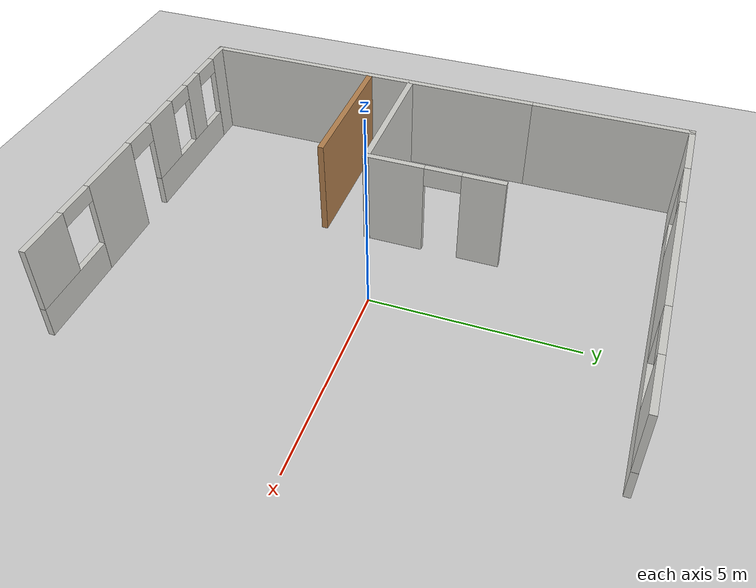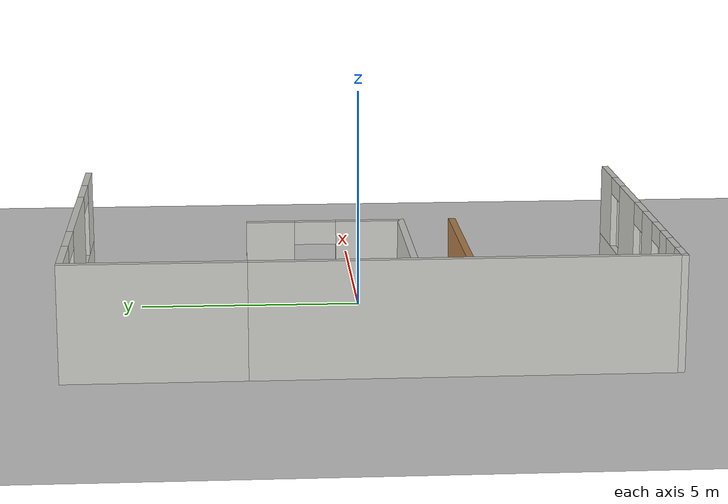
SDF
<sdf version="1.6">
 <world name="default">
  <model name="ground_plane">
   <static>1</static>
   <link name="link">
    <collision name="collision">
     <geometry><plane><normal>0 0 1</normal><size>100 100</size></plane></geometry>
     <surface>
      <contact><collide_bitmask>65535</collide_bitmask></contact>
      <friction><ode><mu>100</mu><mu2>50</mu2></ode></friction>
     </surface>
    </collision>
    <visual name="visual">
     <cast_shadows>0</cast_shadows>
     <geometry><plane><normal>0 0 1</normal><size>100 100</size></plane></geometry>
     <material>
      <script><uri>file://media/materials/scripts/gazebo.material</uri><name>Gazebo/Grey</name></script>
     </material>
    </visual>
   </link>
  </model>
  <model name="house">
   <link name="Wall_0">
    <pose>-5.72496 -1.92194 0 0 -0 1.5708</pose>
    <visual name="Wall_0_Visual">
     <pose>0 0 1.25 0 -0 0</pose>
     <geometry><box><size>9 0.15 2.5</size></box></geometry>
     <material>
      <script><uri>file://media/materials/scripts/gazebo.material</uri><name>Gazebo/CeilingTiled</name></script>
      <ambient>1 1 1 1</ambient>
      <shader type="pixel"/>
     </material>
     <meta><layer>0</layer></meta>
    </visual>
    <collision name="Wall_0_Collision">
     <pose>0 0 1.25 0 -0 0</pose>
     <geometry><box><size>9 0.15 2.5</size></box></geometry>
     <surface>
      <friction>
       <ode><mu>1</mu><mu2>1</mu2><fdir1>0 0 0</fdir1><slip1>0</slip1><slip2>0</slip2></ode>
       <torsional>
        <coefficient>1</coefficient>
        <patch_radius>0</patch_radius>
        <surface_radius>0</surface_radius>
        <use_patch_radius>1</use_patch_radius>
        <ode><slip>0</slip></ode>
       </torsional>
      </friction>
      <bounce><restitution_coefficient>0</restitution_coefficient><threshold>1e+06</threshold></bounce>
      <contact>
       <collide_without_contact>0</collide_without_contact>
       <collide_without_contact_bitmask>1</collide_without_contact_bitmask>
       <collide_bitmask>1</collide_bitmask>
       <ode>
        <soft_cfm>0</soft_cfm>
        <soft_erp>0.2</soft_erp>
        <kp>1e+13</kp>
        <kd>1</kd>
        <max_vel>0.01</max_vel>
        <min_depth>0</min_depth>
       </ode>
       <bullet>
        <split_impulse>1</split_impulse>
        <split_impulse_penetration_threshold>-0.01</split_impulse_penetration_threshold>
        <soft_cfm>0</soft_cfm>
        <soft_erp>0.2</soft_erp>
        <kp>1e+13</kp>
        <kd>1</kd>
       </bullet>
      </contact>
     </surface>
    </collision>
   </link>
   <link name="Wall_13">
    <pose>-2.28096 0.843058 0 0 -0 1.5708</pose>
    <visual name="Wall_13_Visual_2">
     <pose>0.228595 0 2.25 0 -0 0</pose>
     <geometry><box><size>0.9 0.15 0.5</size></box></geometry>
     <material>
      <script><uri>file://media/materials/scripts/gazebo.material</uri><name>Gazebo/CeilingTiled</name></script>
      <ambient>1 1 1 1</ambient>
      <shader type="pixel"/>
     </material>
     <meta><layer>0</layer></meta>
    </visual>
    <visual name="Wall_13_Visual_1">
     <pose>1.2018 0 1.25 0 -0 0</pose>
     <geometry><box><size>1.04641 0.15 2.5</size></box></geometry>
     <material>
      <script><uri>file://media/materials/scripts/gazebo.material</uri><name>Gazebo/CeilingTiled</name></script>
      <ambient>1 1 1 1</ambient>
      <shader type="pixel"/>
     </material>
     <meta><layer>0</layer></meta>
    </visual>
    <visual name="Wall_13_Visual_0">
     <pose>-0.973203 0 1.25 0 -0 0</pose>
     <geometry><box><size>1.5036 0.15 2.5</size></box></geometry>
     <material>
      <script><uri>file://media/materials/scripts/gazebo.material</uri><name>Gazebo/CeilingTiled</name></script>
      <ambient>1 1 1 1</ambient>
      <shader type="pixel"/>
     </material>
     <meta><layer>0</layer></meta>
    </visual>
    <collision name="Wall_13_Collision_1">
     <pose>1.2018 0 1.25 0 -0 0</pose>
     <geometry><box><size>1.04641 0.15 2.5</size></box></geometry>
     <surface>
      <friction>
       <ode><mu>1</mu><mu2>1</mu2><fdir1>0 0 0</fdir1><slip1>0</slip1><slip2>0</slip2></ode>
       <torsional>
        <coefficient>1</coefficient>
        <patch_radius>0</patch_radius>
        <surface_radius>0</surface_radius>
        <use_patch_radius>1</use_patch_radius>
        <ode><slip>0</slip></ode>
       </torsional>
      </friction>
      <bounce><restitution_coefficient>0</restitution_coefficient><threshold>1e+06</threshold></bounce>
      <contact>
       <collide_without_contact>0</collide_without_contact>
       <collide_without_contact_bitmask>1</collide_without_contact_bitmask>
       <collide_bitmask>1</collide_bitmask>
       <ode>
        <soft_cfm>0</soft_cfm>
        <soft_erp>0.2</soft_erp>
        <kp>1e+13</kp>
        <kd>1</kd>
        <max_vel>0.01</max_vel>
        <min_depth>0</min_depth>
       </ode>
       <bullet>
        <split_impulse>1</split_impulse>
        <split_impulse_penetration_threshold>-0.01</split_impulse_penetration_threshold>
        <soft_cfm>0</soft_cfm>
        <soft_erp>0.2</soft_erp>
        <kp>1e+13</kp>
        <kd>1</kd>
       </bullet>
      </contact>
     </surface>
    </collision>
    <collision name="Wall_13_Collision_2">
     <pose>0.228595 0 2.25 0 -0 0</pose>
     <geometry><box><size>0.9 0.15 0.5</size></box></geometry>
     <surface>
      <friction>
       <ode><mu>1</mu><mu2>1</mu2><fdir1>0 0 0</fdir1><slip1>0</slip1><slip2>0</slip2></ode>
       <torsional>
        <coefficient>1</coefficient>
        <patch_radius>0</patch_radius>
        <surface_radius>0</surface_radius>
        <use_patch_radius>1</use_patch_radius>
        <ode><slip>0</slip></ode>
       </torsional>
      </friction>
      <bounce><restitution_coefficient>0</restitution_coefficient><threshold>1e+06</threshold></bounce>
      <contact>
       <collide_without_contact>0</collide_without_contact>
       <collide_without_contact_bitmask>1</collide_without_contact_bitmask>
       <collide_bitmask>1</collide_bitmask>
       <ode>
        <soft_cfm>0</soft_cfm>
        <soft_erp>0.2</soft_erp>
        <kp>1e+13</kp>
        <kd>1</kd>
        <max_vel>0.01</max_vel>
        <min_depth>0</min_depth>
       </ode>
       <bullet>
        <split_impulse>1</split_impulse>
        <split_impulse_penetration_threshold>-0.01</split_impulse_penetration_threshold>
        <soft_cfm>0</soft_cfm>
        <soft_erp>0.2</soft_erp>
        <kp>1e+13</kp>
        <kd>1</kd>
       </bullet>
      </contact>
     </surface>
    </collision>
    <collision name="Wall_13_Collision_0">
     <pose>-0.973203 0 1.25 0 -0 0</pose>
     <geometry><box><size>1.5036 0.15 2.5</size></box></geometry>
     <surface>
      <friction>
       <ode><mu>1</mu><mu2>1</mu2><fdir1>0 0 0</fdir1><slip1>0</slip1><slip2>0</slip2></ode>
       <torsional>
        <coefficient>1</coefficient>
        <patch_radius>0</patch_radius>
        <surface_radius>0</surface_radius>
        <use_patch_radius>1</use_patch_radius>
        <ode><slip>0</slip></ode>
       </torsional>
      </friction>
      <bounce><restitution_coefficient>0</restitution_coefficient><threshold>1e+06</threshold></bounce>
      <contact>
       <collide_without_contact>0</collide_without_contact>
       <collide_without_contact_bitmask>1</collide_without_contact_bitmask>
       <collide_bitmask>1</collide_bitmask>
       <ode>
        <soft_cfm>0</soft_cfm>
        <soft_erp>0.2</soft_erp>
        <kp>1e+13</kp>
        <kd>1</kd>
        <max_vel>0.01</max_vel>
        <min_depth>0</min_depth>
       </ode>
       <bullet>
        <split_impulse>1</split_impulse>
        <split_impulse_penetration_threshold>-0.01</split_impulse_penetration_threshold>
        <soft_cfm>0</soft_cfm>
        <soft_erp>0.2</soft_erp>
        <kp>1e+13</kp>
        <kd>1</kd>
       </bullet>
      </contact>
     </surface>
    </collision>
   </link>
   <link name="Wall_15">
    <pose>-5.72496 4.42806 0 0 -0 1.5708</pose>
    <visual name="Wall_15_Visual">
     <pose>0 0 1.25 0 -0 0</pose>
     <geometry><box><size>4 0.15 2.5</size></box></geometry>
     <material>
      <script><uri>file://media/materials/scripts/gazebo.material</uri><name>Gazebo/CeilingTiled</name></script>
      <ambient>1 1 1 1</ambient>
      <shader type="pixel"/>
     </material>
     <meta><layer>0</layer></meta>
    </visual>
    <collision name="Wall_15_Collision">
     <pose>0 0 1.25 0 -0 0</pose>
     <geometry><box><size>4 0.15 2.5</size></box></geometry>
     <surface>
      <friction>
       <ode><mu>1</mu><mu2>1</mu2><fdir1>0 0 0</fdir1><slip1>0</slip1><slip2>0</slip2></ode>
       <torsional>
        <coefficient>1</coefficient>
        <patch_radius>0</patch_radius>
        <surface_radius>0</surface_radius>
        <use_patch_radius>1</use_patch_radius>
        <ode><slip>0</slip></ode>
       </torsional>
      </friction>
      <bounce><restitution_coefficient>0</restitution_coefficient><threshold>1e+06</threshold></bounce>
      <contact>
       <collide_without_contact>0</collide_without_contact>
       <collide_without_contact_bitmask>1</collide_without_contact_bitmask>
       <collide_bitmask>1</collide_bitmask>
       <ode>
        <soft_cfm>0</soft_cfm>
        <soft_erp>0.2</soft_erp>
        <kp>1e+13</kp>
        <kd>1</kd>
        <max_vel>0.01</max_vel>
        <min_depth>0</min_depth>
       </ode>
       <bullet>
        <split_impulse>1</split_impulse>
        <split_impulse_penetration_threshold>-0.01</split_impulse_penetration_threshold>
        <soft_cfm>0</soft_cfm>
        <soft_erp>0.2</soft_erp>
        <kp>1e+13</kp>
        <kd>1</kd>
       </bullet>
      </contact>
     </surface>
    </collision>
   </link>
   <link name="Wall_16">
    <pose>-1.29996 6.35306 0 0 -0 0</pose>
    <visual name="Wall_16_Visual_5">
     <pose>2.41041 0 2.3 0 -0 0</pose>
     <geometry><box><size>1.3 0.15 0.4</size></box></geometry>
     <material>
      <script><uri>file://media/materials/scripts/gazebo.material</uri><name>Gazebo/CeilingTiled</name></script>
      <ambient>1 1 1 1</ambient>
      <shader type="pixel"/>
     </material>
     <meta><layer>0</layer></meta>
    </visual>
    <visual name="Wall_16_Visual_1">
     <pose>0.804809 0 0.4 0 -0 0</pose>
     <geometry><box><size>7.39038 0.15 0.8</size></box></geometry>
     <material>
      <script><uri>file://media/materials/scripts/gazebo.material</uri><name>Gazebo/CeilingTiled</name></script>
      <ambient>1 1 1 1</ambient>
      <shader type="pixel"/>
     </material>
     <meta><layer>0</layer></meta>
    </visual>
    <visual name="Wall_16_Visual_0">
     <pose>-3.69519 0 1.25 0 -0 0</pose>
     <geometry><box><size>1.60962 0.15 2.5</size></box></geometry>
     <material>
      <script><uri>file://media/materials/scripts/gazebo.material</uri><name>Gazebo/CeilingTiled</name></script>
      <ambient>1 1 1 1</ambient>
      <shader type="pixel"/>
     </material>
     <meta><layer>0</layer></meta>
    </visual>
    <visual name="Wall_16_Visual_2">
     <pose>0.085016 0 1.65 0 -0 0</pose>
     <geometry><box><size>3.3508 0.15 1.7</size></box></geometry>
     <material>
      <script><uri>file://media/materials/scripts/gazebo.material</uri><name>Gazebo/CeilingTiled</name></script>
      <ambient>1 1 1 1</ambient>
      <shader type="pixel"/>
     </material>
     <meta><layer>0</layer></meta>
    </visual>
    <visual name="Wall_16_Visual_4">
     <pose>-2.24038 0 2.3 0 -0 0</pose>
     <geometry><box><size>1.3 0.15 0.4</size></box></geometry>
     <material>
      <script><uri>file://media/materials/scripts/gazebo.material</uri><name>Gazebo/CeilingTiled</name></script>
      <ambient>1 1 1 1</ambient>
      <shader type="pixel"/>
     </material>
     <meta><layer>0</layer></meta>
    </visual>
    <visual name="Wall_16_Visual_3">
     <pose>3.78021 0 1.65 0 -0 0</pose>
     <geometry><box><size>1.43959 0.15 1.7</size></box></geometry>
     <material>
      <script><uri>file://media/materials/scripts/gazebo.material</uri><name>Gazebo/CeilingTiled</name></script>
      <ambient>1 1 1 1</ambient>
      <shader type="pixel"/>
     </material>
     <meta><layer>0</layer></meta>
    </visual>
    <collision name="Wall_16_Collision_2">
     <pose>0.085016 0 1.65 0 -0 0</pose>
     <geometry><box><size>3.3508 0.15 1.7</size></box></geometry>
     <surface>
      <friction>
       <ode><mu>1</mu><mu2>1</mu2><fdir1>0 0 0</fdir1><slip1>0</slip1><slip2>0</slip2></ode>
       <torsional>
        <coefficient>1</coefficient>
        <patch_radius>0</patch_radius>
        <surface_radius>0</surface_radius>
        <use_patch_radius>1</use_patch_radius>
        <ode><slip>0</slip></ode>
       </torsional>
      </friction>
      <bounce><restitution_coefficient>0</restitution_coefficient><threshold>1e+06</threshold></bounce>
      <contact>
       <collide_without_contact>0</collide_without_contact>
       <collide_without_contact_bitmask>1</collide_without_contact_bitmask>
       <collide_bitmask>1</collide_bitmask>
       <ode>
        <soft_cfm>0</soft_cfm>
        <soft_erp>0.2</soft_erp>
        <kp>1e+13</kp>
        <kd>1</kd>
        <max_vel>0.01</max_vel>
        <min_depth>0</min_depth>
       </ode>
       <bullet>
        <split_impulse>1</split_impulse>
        <split_impulse_penetration_threshold>-0.01</split_impulse_penetration_threshold>
        <soft_cfm>0</soft_cfm>
        <soft_erp>0.2</soft_erp>
        <kp>1e+13</kp>
        <kd>1</kd>
       </bullet>
      </contact>
     </surface>
    </collision>
    <collision name="Wall_16_Collision_0">
     <pose>-3.69519 0 1.25 0 -0 0</pose>
     <geometry><box><size>1.60962 0.15 2.5</size></box></geometry>
     <surface>
      <friction>
       <ode><mu>1</mu><mu2>1</mu2><fdir1>0 0 0</fdir1><slip1>0</slip1><slip2>0</slip2></ode>
       <torsional>
        <coefficient>1</coefficient>
        <patch_radius>0</patch_radius>
        <surface_radius>0</surface_radius>
        <use_patch_radius>1</use_patch_radius>
        <ode><slip>0</slip></ode>
       </torsional>
      </friction>
      <bounce><restitution_coefficient>0</restitution_coefficient><threshold>1e+06</threshold></bounce>
      <contact>
       <collide_without_contact>0</collide_without_contact>
       <collide_without_contact_bitmask>1</collide_without_contact_bitmask>
       <collide_bitmask>1</collide_bitmask>
       <ode>
        <soft_cfm>0</soft_cfm>
        <soft_erp>0.2</soft_erp>
        <kp>1e+13</kp>
        <kd>1</kd>
        <max_vel>0.01</max_vel>
        <min_depth>0</min_depth>
       </ode>
       <bullet>
        <split_impulse>1</split_impulse>
        <split_impulse_penetration_threshold>-0.01</split_impulse_penetration_threshold>
        <soft_cfm>0</soft_cfm>
        <soft_erp>0.2</soft_erp>
        <kp>1e+13</kp>
        <kd>1</kd>
       </bullet>
      </contact>
     </surface>
    </collision>
    <collision name="Wall_16_Collision_3">
     <pose>3.78021 0 1.65 0 -0 0</pose>
     <geometry><box><size>1.43959 0.15 1.7</size></box></geometry>
     <surface>
      <friction>
       <ode><mu>1</mu><mu2>1</mu2><fdir1>0 0 0</fdir1><slip1>0</slip1><slip2>0</slip2></ode>
       <torsional>
        <coefficient>1</coefficient>
        <patch_radius>0</patch_radius>
        <surface_radius>0</surface_radius>
        <use_patch_radius>1</use_patch_radius>
        <ode><slip>0</slip></ode>
       </torsional>
      </friction>
      <bounce><restitution_coefficient>0</restitution_coefficient><threshold>1e+06</threshold></bounce>
      <contact>
       <collide_without_contact>0</collide_without_contact>
       <collide_without_contact_bitmask>1</collide_without_contact_bitmask>
       <collide_bitmask>1</collide_bitmask>
       <ode>
        <soft_cfm>0</soft_cfm>
        <soft_erp>0.2</soft_erp>
        <kp>1e+13</kp>
        <kd>1</kd>
        <max_vel>0.01</max_vel>
        <min_depth>0</min_depth>
       </ode>
       <bullet>
        <split_impulse>1</split_impulse>
        <split_impulse_penetration_threshold>-0.01</split_impulse_penetration_threshold>
        <soft_cfm>0</soft_cfm>
        <soft_erp>0.2</soft_erp>
        <kp>1e+13</kp>
        <kd>1</kd>
       </bullet>
      </contact>
     </surface>
    </collision>
    <collision name="Wall_16_Collision_4">
     <pose>-2.24038 0 2.3 0 -0 0</pose>
     <geometry><box><size>1.3 0.15 0.4</size></box></geometry>
     <surface>
      <friction>
       <ode><mu>1</mu><mu2>1</mu2><fdir1>0 0 0</fdir1><slip1>0</slip1><slip2>0</slip2></ode>
       <torsional>
        <coefficient>1</coefficient>
        <patch_radius>0</patch_radius>
        <surface_radius>0</surface_radius>
        <use_patch_radius>1</use_patch_radius>
        <ode><slip>0</slip></ode>
       </torsional>
      </friction>
      <bounce><restitution_coefficient>0</restitution_coefficient><threshold>1e+06</threshold></bounce>
      <contact>
       <collide_without_contact>0</collide_without_contact>
       <collide_without_contact_bitmask>1</collide_without_contact_bitmask>
       <collide_bitmask>1</collide_bitmask>
       <ode>
        <soft_cfm>0</soft_cfm>
        <soft_erp>0.2</soft_erp>
        <kp>1e+13</kp>
        <kd>1</kd>
        <max_vel>0.01</max_vel>
        <min_depth>0</min_depth>
       </ode>
       <bullet>
        <split_impulse>1</split_impulse>
        <split_impulse_penetration_threshold>-0.01</split_impulse_penetration_threshold>
        <soft_cfm>0</soft_cfm>
        <soft_erp>0.2</soft_erp>
        <kp>1e+13</kp>
        <kd>1</kd>
       </bullet>
      </contact>
     </surface>
    </collision>
    <collision name="Wall_16_Collision_5">
     <pose>2.41041 0 2.3 0 -0 0</pose>
     <geometry><box><size>1.3 0.15 0.4</size></box></geometry>
     <surface>
      <friction>
       <ode><mu>1</mu><mu2>1</mu2><fdir1>0 0 0</fdir1><slip1>0</slip1><slip2>0</slip2></ode>
       <torsional>
        <coefficient>1</coefficient>
        <patch_radius>0</patch_radius>
        <surface_radius>0</surface_radius>
        <use_patch_radius>1</use_patch_radius>
        <ode><slip>0</slip></ode>
       </torsional>
      </friction>
      <bounce><restitution_coefficient>0</restitution_coefficient><threshold>1e+06</threshold></bounce>
      <contact>
       <collide_without_contact>0</collide_without_contact>
       <collide_without_contact_bitmask>1</collide_without_contact_bitmask>
       <collide_bitmask>1</collide_bitmask>
       <ode>
        <soft_cfm>0</soft_cfm>
        <soft_erp>0.2</soft_erp>
        <kp>1e+13</kp>
        <kd>1</kd>
        <max_vel>0.01</max_vel>
        <min_depth>0</min_depth>
       </ode>
       <bullet>
        <split_impulse>1</split_impulse>
        <split_impulse_penetration_threshold>-0.01</split_impulse_penetration_threshold>
        <soft_cfm>0</soft_cfm>
        <soft_erp>0.2</soft_erp>
        <kp>1e+13</kp>
        <kd>1</kd>
       </bullet>
      </contact>
     </surface>
    </collision>
    <collision name="Wall_16_Collision_1">
     <pose>0.804809 0 0.4 0 -0 0</pose>
     <geometry><box><size>7.39038 0.15 0.8</size></box></geometry>
     <surface>
      <friction>
       <ode><mu>1</mu><mu2>1</mu2><fdir1>0 0 0</fdir1><slip1>0</slip1><slip2>0</slip2></ode>
       <torsional>
        <coefficient>1</coefficient>
        <patch_radius>0</patch_radius>
        <surface_radius>0</surface_radius>
        <use_patch_radius>1</use_patch_radius>
        <ode><slip>0</slip></ode>
       </torsional>
      </friction>
      <bounce><restitution_coefficient>0</restitution_coefficient><threshold>1e+06</threshold></bounce>
      <contact>
       <collide_without_contact>0</collide_without_contact>
       <collide_without_contact_bitmask>1</collide_without_contact_bitmask>
       <collide_bitmask>1</collide_bitmask>
       <ode>
        <soft_cfm>0</soft_cfm>
        <soft_erp>0.2</soft_erp>
        <kp>1e+13</kp>
        <kd>1</kd>
        <max_vel>0.01</max_vel>
        <min_depth>0</min_depth>
       </ode>
       <bullet>
        <split_impulse>1</split_impulse>
        <split_impulse_penetration_threshold>-0.01</split_impulse_penetration_threshold>
        <soft_cfm>0</soft_cfm>
        <soft_erp>0.2</soft_erp>
        <kp>1e+13</kp>
        <kd>1</kd>
       </bullet>
      </contact>
     </surface>
    </collision>
   </link>
   <link name="Wall_2">
    <pose>-1.29996 -6.34794 0 0 0 -0.000226</pose>
    <inertial>
     <mass>1</mass>
     <inertia><ixx>1</ixx><ixy>0</ixy><ixz>0</ixz><iyy>1</iyy><iyz>0</iyz><izz>1</izz></inertia>
    </inertial>
    <visual name="Wall_2_Visual_2">
     <pose>-2.14 0 0.4 0 -0 0</pose>
     <geometry><box><size>3.31 0.15 0.8</size></box></geometry>
     <material>
      <script><uri>file://media/materials/scripts/gazebo.material</uri><name>Gazebo/CeilingTiled</name></script>
      <ambient>1 1 1 1</ambient>
      <shader type="pixel"><normal_map>__default__</normal_map></shader>
      <diffuse>0.7 0.7 0.7 1</diffuse>
      <specular>0.01 0.01 0.01 1</specular>
      <emissive>0 0 0 1</emissive>
     </material>
     <meta><layer>0</layer></meta>
    </visual>
    <visual name="Wall_2_Visual_3">
     <pose>3.33488 0 0.4 0 -0 0</pose>
     <geometry><box><size>2.33037 0.15 0.8</size></box></geometry>
     <material>
      <script><uri>file://media/materials/scripts/gazebo.material</uri><name>Gazebo/CeilingTiled</name></script>
      <ambient>1 1 1 1</ambient>
      <shader type="pixel"><normal_map>__default__</normal_map></shader>
      <diffuse>0.7 0.7 0.7 1</diffuse>
      <specular>0.01 0.01 0.01 1</specular>
      <emissive>0 0 0 1</emissive>
     </material>
     <meta><layer>0</layer></meta>
    </visual>
    <visual name="Wall_2_Visual_4">
     <pose>-2.67 0 1.65 0 -0 0</pose>
     <geometry><box><size>0.65 0.15 1.7</size></box></geometry>
     <material>
      <script><uri>file://media/materials/scripts/gazebo.material</uri><name>Gazebo/CeilingTiled</name></script>
      <ambient>1 1 1 1</ambient>
      <shader type="pixel"><normal_map>__default__</normal_map></shader>
      <diffuse>0.7 0.7 0.7 1</diffuse>
      <specular>0.01 0.01 0.01 1</specular>
      <emissive>0 0 0 1</emissive>
     </material>
     <meta><layer>0</layer></meta>
    </visual>
    <visual name="Wall_2_Visual_1">
     <pose>1.29235 0 1.25 0 -0 0</pose>
     <geometry><box><size>1.75469 0.15 2.5</size></box></geometry>
     <material>
      <script><uri>file://media/materials/scripts/gazebo.material</uri><name>Gazebo/CeilingTiled</name></script>
      <ambient>1 1 1 1</ambient>
      <shader type="pixel"><normal_map>__default__</normal_map></shader>
      <diffuse>0.7 0.7 0.7 1</diffuse>
      <specular>0.01 0.01 0.01 1</specular>
      <emissive>0 0 0 1</emissive>
     </material>
     <meta><layer>0</layer></meta>
    </visual>
    <visual name="Wall_2_Visual_11">
     <pose>2.66969 0 2.3 0 -0 0</pose>
     <geometry><box><size>1 0.15 0.4</size></box></geometry>
     <material>
      <script><uri>file://media/materials/scripts/gazebo.material</uri><name>Gazebo/CeilingTiled</name></script>
      <ambient>1 1 1 1</ambient>
      <shader type="pixel"><normal_map>__default__</normal_map></shader>
      <diffuse>0.7 0.7 0.7 1</diffuse>
      <specular>0.01 0.01 0.01 1</specular>
      <emissive>0 0 0 1</emissive>
     </material>
     <meta><layer>0</layer></meta>
    </visual>
    <visual name="Wall_2_Visual_6">
     <pose>-1.015 0 1.65 0 -0 0</pose>
     <geometry><box><size>1.06 0.15 1.7</size></box></geometry>
     <material>
      <script><uri>file://media/materials/scripts/gazebo.material</uri><name>Gazebo/CeilingTiled</name></script>
      <ambient>1 1 1 1</ambient>
      <shader type="pixel"><normal_map>__default__</normal_map></shader>
      <diffuse>0.7 0.7 0.7 1</diffuse>
      <specular>0.01 0.01 0.01 1</specular>
      <emissive>0 0 0 1</emissive>
     </material>
     <meta><layer>0</layer></meta>
    </visual>
    <visual name="Wall_2_Visual_5">
     <pose>-1.015 0 1.65 0 -0 0</pose>
     <geometry><box><size>1.06 0.15 1.7</size></box></geometry>
     <material>
      <script><uri>file://media/materials/scripts/gazebo.material</uri><name>Gazebo/CeilingTiled</name></script>
      <ambient>1 1 1 1</ambient>
      <shader type="pixel"><normal_map>__default__</normal_map></shader>
      <diffuse>0.7 0.7 0.7 1</diffuse>
      <specular>0.01 0.01 0.01 1</specular>
      <emissive>0 0 0 1</emissive>
     </material>
     <meta><layer>0</layer></meta>
    </visual>
    <visual name="Wall_2_Visual_9">
     <pose>-0.035 0 2.25 0 -0 0</pose>
     <geometry><box><size>0.9 0.15 0.5</size></box></geometry>
     <material>
      <script><uri>file://media/materials/scripts/gazebo.material</uri><name>Gazebo/CeilingTiled</name></script>
      <ambient>1 1 1 1</ambient>
      <shader type="pixel"><normal_map>__default__</normal_map></shader>
      <diffuse>0.7 0.7 0.7 1</diffuse>
      <specular>0.01 0.01 0.01 1</specular>
      <emissive>0 0 0 1</emissive>
     </material>
     <meta><layer>0</layer></meta>
    </visual>
    <visual name="Wall_2_Visual_12">
     <pose>-1.945 0 2.3 0 -0 0</pose>
     <geometry><box><size>0.8 0.15 0.4</size></box></geometry>
     <material>
      <script><uri>file://media/materials/scripts/gazebo.material</uri><name>Gazebo/CeilingTiled</name></script>
      <ambient>1 1 1 1</ambient>
      <shader type="pixel"><normal_map>__default__</normal_map></shader>
      <diffuse>0.7 0.7 0.7 1</diffuse>
      <specular>0.01 0.01 0.01 1</specular>
      <emissive>0 0 0 1</emissive>
     </material>
     <meta><layer>0</layer></meta>
    </visual>
    <visual name="Wall_2_Visual_0">
     <pose>-4.14753 0 1.25 0 -0 0</pose>
     <geometry><box><size>0.705065 0.15 2.5</size></box></geometry>
     <material>
      <script><uri>file://media/materials/scripts/gazebo.material</uri><name>Gazebo/CeilingTiled</name></script>
      <ambient>1 1 1 1</ambient>
      <shader type="pixel"><normal_map>__default__</normal_map></shader>
      <diffuse>1 1 1 1</diffuse>
      <specular>0 0 0 1</specular>
      <emissive>0 0 0 1</emissive>
     </material>
     <meta><layer>0</layer></meta>
    </visual>
    <visual name="Wall_2_Visual_10">
     <pose>-3.395 0 2.3 0 -0 0</pose>
     <geometry><box><size>0.8 0.15 0.4</size></box></geometry>
     <material>
      <script><uri>file://media/materials/scripts/gazebo.material</uri><name>Gazebo/CeilingTiled</name></script>
      <ambient>1 1 1 1</ambient>
      <shader type="pixel"><normal_map>__default__</normal_map></shader>
      <diffuse>0.7 0.7 0.7 1</diffuse>
      <specular>0.01 0.01 0.01 1</specular>
      <emissive>0 0 0 1</emissive>
     </material>
     <meta><layer>0</layer></meta>
    </visual>
    <visual name="Wall_2_Visual_7">
     <pose>3.83488 0 1.65 0 -0 0</pose>
     <geometry><box><size>1.33037 0.15 1.7</size></box></geometry>
     <material>
      <script><uri>file://media/materials/scripts/gazebo.material</uri><name>Gazebo/CeilingTiled</name></script>
      <ambient>1 1 1 1</ambient>
      <shader type="pixel"><normal_map>__default__</normal_map></shader>
      <diffuse>0.7 0.7 0.7 1</diffuse>
      <specular>0.01 0.01 0.01 1</specular>
      <emissive>0 0 0 1</emissive>
     </material>
     <meta><layer>0</layer></meta>
    </visual>
    <visual name="Wall_2_Visual_8">
     <pose>-0.035 0 2.25 0 -0 0</pose>
     <geometry><box><size>0.9 0.15 0.5</size></box></geometry>
     <material>
      <script><uri>file://media/materials/scripts/gazebo.material</uri><name>Gazebo/CeilingTiled</name></script>
      <ambient>1 1 1 1</ambient>
      <shader type="pixel"><normal_map>__default__</normal_map></shader>
      <diffuse>0.7 0.7 0.7 1</diffuse>
      <specular>0.01 0.01 0.01 1</specular>
      <emissive>0 0 0 1</emissive>
     </material>
     <meta><layer>0</layer></meta>
    </visual>
    <collision name="Wall_2_Collision_11">
     <pose>2.66969 0 2.3 0 -0 0</pose>
     <geometry><box><size>1 0.15 0.4</size></box></geometry>
     <surface>
      <friction>
       <ode><mu>1</mu><mu2>1</mu2><fdir1>0 0 0</fdir1><slip1>0</slip1><slip2>0</slip2></ode>
       <torsional>
        <coefficient>1</coefficient>
        <patch_radius>0</patch_radius>
        <surface_radius>0</surface_radius>
        <use_patch_radius>1</use_patch_radius>
        <ode><slip>0</slip></ode>
       </torsional>
      </friction>
      <bounce><restitution_coefficient>0</restitution_coefficient><threshold>1e+06</threshold></bounce>
      <contact>
       <collide_without_contact>0</collide_without_contact>
       <collide_without_contact_bitmask>1</collide_without_contact_bitmask>
       <collide_bitmask>1</collide_bitmask>
       <ode>
        <soft_cfm>0</soft_cfm>
        <soft_erp>0.2</soft_erp>
        <kp>1e+13</kp>
        <kd>1</kd>
        <max_vel>0.01</max_vel>
        <min_depth>0</min_depth>
       </ode>
       <bullet>
        <split_impulse>1</split_impulse>
        <split_impulse_penetration_threshold>-0.01</split_impulse_penetration_threshold>
        <soft_cfm>0</soft_cfm>
        <soft_erp>0.2</soft_erp>
        <kp>1e+13</kp>
        <kd>1</kd>
       </bullet>
      </contact>
     </surface>
    </collision>
    <collision name="Wall_2_Collision_8">
     <pose>-0.035 0 2.25 0 -0 0</pose>
     <geometry><box><size>0.9 0.15 0.5</size></box></geometry>
     <surface>
      <friction>
       <ode><mu>1</mu><mu2>1</mu2><fdir1>0 0 0</fdir1><slip1>0</slip1><slip2>0</slip2></ode>
       <torsional>
        <coefficient>1</coefficient>
        <patch_radius>0</patch_radius>
        <surface_radius>0</surface_radius>
        <use_patch_radius>1</use_patch_radius>
        <ode><slip>0</slip></ode>
       </torsional>
      </friction>
      <bounce><restitution_coefficient>0</restitution_coefficient><threshold>1e+06</threshold></bounce>
      <contact>
       <collide_without_contact>0</collide_without_contact>
       <collide_without_contact_bitmask>1</collide_without_contact_bitmask>
       <collide_bitmask>1</collide_bitmask>
       <ode>
        <soft_cfm>0</soft_cfm>
        <soft_erp>0.2</soft_erp>
        <kp>1e+13</kp>
        <kd>1</kd>
        <max_vel>0.01</max_vel>
        <min_depth>0</min_depth>
       </ode>
       <bullet>
        <split_impulse>1</split_impulse>
        <split_impulse_penetration_threshold>-0.01</split_impulse_penetration_threshold>
        <soft_cfm>0</soft_cfm>
        <soft_erp>0.2</soft_erp>
        <kp>1e+13</kp>
        <kd>1</kd>
       </bullet>
      </contact>
     </surface>
    </collision>
    <collision name="Wall_2_Collision_4">
     <pose>-2.67 0 1.65 0 -0 0</pose>
     <geometry><box><size>0.65 0.15 1.7</size></box></geometry>
     <surface>
      <friction>
       <ode><mu>1</mu><mu2>1</mu2><fdir1>0 0 0</fdir1><slip1>0</slip1><slip2>0</slip2></ode>
       <torsional>
        <coefficient>1</coefficient>
        <patch_radius>0</patch_radius>
        <surface_radius>0</surface_radius>
        <use_patch_radius>1</use_patch_radius>
        <ode><slip>0</slip></ode>
       </torsional>
      </friction>
      <bounce><restitution_coefficient>0</restitution_coefficient><threshold>1e+06</threshold></bounce>
      <contact>
       <collide_without_contact>0</collide_without_contact>
       <collide_without_contact_bitmask>1</collide_without_contact_bitmask>
       <collide_bitmask>1</collide_bitmask>
       <ode>
        <soft_cfm>0</soft_cfm>
        <soft_erp>0.2</soft_erp>
        <kp>1e+13</kp>
        <kd>1</kd>
        <max_vel>0.01</max_vel>
        <min_depth>0</min_depth>
       </ode>
       <bullet>
        <split_impulse>1</split_impulse>
        <split_impulse_penetration_threshold>-0.01</split_impulse_penetration_threshold>
        <soft_cfm>0</soft_cfm>
        <soft_erp>0.2</soft_erp>
        <kp>1e+13</kp>
        <kd>1</kd>
       </bullet>
      </contact>
     </surface>
    </collision>
    <collision name="Wall_2_Collision_2">
     <pose>-2.14 0 0.4 0 -0 0</pose>
     <geometry><box><size>3.31 0.15 0.8</size></box></geometry>
     <surface>
      <friction>
       <ode><mu>1</mu><mu2>1</mu2><fdir1>0 0 0</fdir1><slip1>0</slip1><slip2>0</slip2></ode>
       <torsional>
        <coefficient>1</coefficient>
        <patch_radius>0</patch_radius>
        <surface_radius>0</surface_radius>
        <use_patch_radius>1</use_patch_radius>
        <ode><slip>0</slip></ode>
       </torsional>
      </friction>
      <bounce><restitution_coefficient>0</restitution_coefficient><threshold>1e+06</threshold></bounce>
      <contact>
       <collide_without_contact>0</collide_without_contact>
       <collide_without_contact_bitmask>1</collide_without_contact_bitmask>
       <collide_bitmask>1</collide_bitmask>
       <ode>
        <soft_cfm>0</soft_cfm>
        <soft_erp>0.2</soft_erp>
        <kp>1e+13</kp>
        <kd>1</kd>
        <max_vel>0.01</max_vel>
        <min_depth>0</min_depth>
       </ode>
       <bullet>
        <split_impulse>1</split_impulse>
        <split_impulse_penetration_threshold>-0.01</split_impulse_penetration_threshold>
        <soft_cfm>0</soft_cfm>
        <soft_erp>0.2</soft_erp>
        <kp>1e+13</kp>
        <kd>1</kd>
       </bullet>
      </contact>
     </surface>
    </collision>
    <collision name="Wall_2_Collision_1">
     <pose>1.29235 0 1.25 0 -0 0</pose>
     <geometry><box><size>1.75469 0.15 2.5</size></box></geometry>
     <surface>
      <friction>
       <ode><mu>1</mu><mu2>1</mu2><fdir1>0 0 0</fdir1><slip1>0</slip1><slip2>0</slip2></ode>
       <torsional>
        <coefficient>1</coefficient>
        <patch_radius>0</patch_radius>
        <surface_radius>0</surface_radius>
        <use_patch_radius>1</use_patch_radius>
        <ode><slip>0</slip></ode>
       </torsional>
      </friction>
      <bounce><restitution_coefficient>0</restitution_coefficient><threshold>1e+06</threshold></bounce>
      <contact>
       <collide_without_contact>0</collide_without_contact>
       <collide_without_contact_bitmask>1</collide_without_contact_bitmask>
       <collide_bitmask>1</collide_bitmask>
       <ode>
        <soft_cfm>0</soft_cfm>
        <soft_erp>0.2</soft_erp>
        <kp>1e+13</kp>
        <kd>1</kd>
        <max_vel>0.01</max_vel>
        <min_depth>0</min_depth>
       </ode>
       <bullet>
        <split_impulse>1</split_impulse>
        <split_impulse_penetration_threshold>-0.01</split_impulse_penetration_threshold>
        <soft_cfm>0</soft_cfm>
        <soft_erp>0.2</soft_erp>
        <kp>1e+13</kp>
        <kd>1</kd>
       </bullet>
      </contact>
     </surface>
    </collision>
    <collision name="Wall_2_Collision_12">
     <pose>-1.945 0 2.3 0 -0 0</pose>
     <geometry><box><size>0.8 0.15 0.4</size></box></geometry>
     <surface>
      <friction>
       <ode><mu>1</mu><mu2>1</mu2><fdir1>0 0 0</fdir1><slip1>0</slip1><slip2>0</slip2></ode>
       <torsional>
        <coefficient>1</coefficient>
        <patch_radius>0</patch_radius>
        <surface_radius>0</surface_radius>
        <use_patch_radius>1</use_patch_radius>
        <ode><slip>0</slip></ode>
       </torsional>
      </friction>
      <bounce><restitution_coefficient>0</restitution_coefficient><threshold>1e+06</threshold></bounce>
      <contact>
       <collide_without_contact>0</collide_without_contact>
       <collide_without_contact_bitmask>1</collide_without_contact_bitmask>
       <collide_bitmask>1</collide_bitmask>
       <ode>
        <soft_cfm>0</soft_cfm>
        <soft_erp>0.2</soft_erp>
        <kp>1e+13</kp>
        <kd>1</kd>
        <max_vel>0.01</max_vel>
        <min_depth>0</min_depth>
       </ode>
       <bullet>
        <split_impulse>1</split_impulse>
        <split_impulse_penetration_threshold>-0.01</split_impulse_penetration_threshold>
        <soft_cfm>0</soft_cfm>
        <soft_erp>0.2</soft_erp>
        <kp>1e+13</kp>
        <kd>1</kd>
       </bullet>
      </contact>
     </surface>
    </collision>
    <collision name="Wall_2_Collision_6">
     <pose>-1.015 0 1.65 0 -0 0</pose>
     <geometry><box><size>1.06 0.15 1.7</size></box></geometry>
     <surface>
      <friction>
       <ode><mu>1</mu><mu2>1</mu2><fdir1>0 0 0</fdir1><slip1>0</slip1><slip2>0</slip2></ode>
       <torsional>
        <coefficient>1</coefficient>
        <patch_radius>0</patch_radius>
        <surface_radius>0</surface_radius>
        <use_patch_radius>1</use_patch_radius>
        <ode><slip>0</slip></ode>
       </torsional>
      </friction>
      <bounce><restitution_coefficient>0</restitution_coefficient><threshold>1e+06</threshold></bounce>
      <contact>
       <collide_without_contact>0</collide_without_contact>
       <collide_without_contact_bitmask>1</collide_without_contact_bitmask>
       <collide_bitmask>1</collide_bitmask>
       <ode>
        <soft_cfm>0</soft_cfm>
        <soft_erp>0.2</soft_erp>
        <kp>1e+13</kp>
        <kd>1</kd>
        <max_vel>0.01</max_vel>
        <min_depth>0</min_depth>
       </ode>
       <bullet>
        <split_impulse>1</split_impulse>
        <split_impulse_penetration_threshold>-0.01</split_impulse_penetration_threshold>
        <soft_cfm>0</soft_cfm>
        <soft_erp>0.2</soft_erp>
        <kp>1e+13</kp>
        <kd>1</kd>
       </bullet>
      </contact>
     </surface>
    </collision>
    <collision name="Wall_2_Collision_10">
     <pose>-3.395 0 2.3 0 -0 0</pose>
     <geometry><box><size>0.8 0.15 0.4</size></box></geometry>
     <surface>
      <friction>
       <ode><mu>1</mu><mu2>1</mu2><fdir1>0 0 0</fdir1><slip1>0</slip1><slip2>0</slip2></ode>
       <torsional>
        <coefficient>1</coefficient>
        <patch_radius>0</patch_radius>
        <surface_radius>0</surface_radius>
        <use_patch_radius>1</use_patch_radius>
        <ode><slip>0</slip></ode>
       </torsional>
      </friction>
      <bounce><restitution_coefficient>0</restitution_coefficient><threshold>1e+06</threshold></bounce>
      <contact>
       <collide_without_contact>0</collide_without_contact>
       <collide_without_contact_bitmask>1</collide_without_contact_bitmask>
       <collide_bitmask>1</collide_bitmask>
       <ode>
        <soft_cfm>0</soft_cfm>
        <soft_erp>0.2</soft_erp>
        <kp>1e+13</kp>
        <kd>1</kd>
        <max_vel>0.01</max_vel>
        <min_depth>0</min_depth>
       </ode>
       <bullet>
        <split_impulse>1</split_impulse>
        <split_impulse_penetration_threshold>-0.01</split_impulse_penetration_threshold>
        <soft_cfm>0</soft_cfm>
        <soft_erp>0.2</soft_erp>
        <kp>1e+13</kp>
        <kd>1</kd>
       </bullet>
      </contact>
     </surface>
    </collision>
    <collision name="Wall_2_Collision_7">
     <pose>3.83488 0 1.65 0 -0 0</pose>
     <geometry><box><size>1.33037 0.15 1.7</size></box></geometry>
     <surface>
      <friction>
       <ode><mu>1</mu><mu2>1</mu2><fdir1>0 0 0</fdir1><slip1>0</slip1><slip2>0</slip2></ode>
       <torsional>
        <coefficient>1</coefficient>
        <patch_radius>0</patch_radius>
        <surface_radius>0</surface_radius>
        <use_patch_radius>1</use_patch_radius>
        <ode><slip>0</slip></ode>
       </torsional>
      </friction>
      <bounce><restitution_coefficient>0</restitution_coefficient><threshold>1e+06</threshold></bounce>
      <contact>
       <collide_without_contact>0</collide_without_contact>
       <collide_without_contact_bitmask>1</collide_without_contact_bitmask>
       <collide_bitmask>1</collide_bitmask>
       <ode>
        <soft_cfm>0</soft_cfm>
        <soft_erp>0.2</soft_erp>
        <kp>1e+13</kp>
        <kd>1</kd>
        <max_vel>0.01</max_vel>
        <min_depth>0</min_depth>
       </ode>
       <bullet>
        <split_impulse>1</split_impulse>
        <split_impulse_penetration_threshold>-0.01</split_impulse_penetration_threshold>
        <soft_cfm>0</soft_cfm>
        <soft_erp>0.2</soft_erp>
        <kp>1e+13</kp>
        <kd>1</kd>
       </bullet>
      </contact>
     </surface>
    </collision>
    <collision name="Wall_2_Collision_5">
     <pose>-1.015 0 1.65 0 -0 0</pose>
     <geometry><box><size>1.06 0.15 1.7</size></box></geometry>
     <surface>
      <friction>
       <ode><mu>1</mu><mu2>1</mu2><fdir1>0 0 0</fdir1><slip1>0</slip1><slip2>0</slip2></ode>
       <torsional>
        <coefficient>1</coefficient>
        <patch_radius>0</patch_radius>
        <surface_radius>0</surface_radius>
        <use_patch_radius>1</use_patch_radius>
        <ode><slip>0</slip></ode>
       </torsional>
      </friction>
      <bounce><restitution_coefficient>0</restitution_coefficient><threshold>1e+06</threshold></bounce>
      <contact>
       <collide_without_contact>0</collide_without_contact>
       <collide_without_contact_bitmask>1</collide_without_contact_bitmask>
       <collide_bitmask>1</collide_bitmask>
       <ode>
        <soft_cfm>0</soft_cfm>
        <soft_erp>0.2</soft_erp>
        <kp>1e+13</kp>
        <kd>1</kd>
        <max_vel>0.01</max_vel>
        <min_depth>0</min_depth>
       </ode>
       <bullet>
        <split_impulse>1</split_impulse>
        <split_impulse_penetration_threshold>-0.01</split_impulse_penetration_threshold>
        <soft_cfm>0</soft_cfm>
        <soft_erp>0.2</soft_erp>
        <kp>1e+13</kp>
        <kd>1</kd>
       </bullet>
      </contact>
     </surface>
    </collision>
    <collision name="Wall_2_Collision_9">
     <pose>-0.035 0 2.25 0 -0 0</pose>
     <geometry><box><size>0.9 0.15 0.5</size></box></geometry>
     <surface>
      <friction>
       <ode><mu>1</mu><mu2>1</mu2><fdir1>0 0 0</fdir1><slip1>0</slip1><slip2>0</slip2></ode>
       <torsional>
        <coefficient>1</coefficient>
        <patch_radius>0</patch_radius>
        <surface_radius>0</surface_radius>
        <use_patch_radius>1</use_patch_radius>
        <ode><slip>0</slip></ode>
       </torsional>
      </friction>
      <bounce><restitution_coefficient>0</restitution_coefficient><threshold>1e+06</threshold></bounce>
      <contact>
       <collide_without_contact>0</collide_without_contact>
       <collide_without_contact_bitmask>1</collide_without_contact_bitmask>
       <collide_bitmask>1</collide_bitmask>
       <ode>
        <soft_cfm>0</soft_cfm>
        <soft_erp>0.2</soft_erp>
        <kp>1e+13</kp>
        <kd>1</kd>
        <max_vel>0.01</max_vel>
        <min_depth>0</min_depth>
       </ode>
       <bullet>
        <split_impulse>1</split_impulse>
        <split_impulse_penetration_threshold>-0.01</split_impulse_penetration_threshold>
        <soft_cfm>0</soft_cfm>
        <soft_erp>0.2</soft_erp>
        <kp>1e+13</kp>
        <kd>1</kd>
       </bullet>
      </contact>
     </surface>
    </collision>
    <collision name="Wall_2_Collision_0">
     <pose>-4.14753 0 1.25 0 -0 0</pose>
     <geometry><box><size>0.705065 0.15 2.5</size></box></geometry>
     <surface>
      <friction>
       <ode><mu>1</mu><mu2>1</mu2><fdir1>0 0 0</fdir1><slip1>0</slip1><slip2>0</slip2></ode>
       <torsional>
        <coefficient>1</coefficient>
        <patch_radius>0</patch_radius>
        <surface_radius>0</surface_radius>
        <use_patch_radius>1</use_patch_radius>
        <ode><slip>0</slip></ode>
       </torsional>
      </friction>
      <bounce><restitution_coefficient>0</restitution_coefficient><threshold>1e+06</threshold></bounce>
      <contact>
       <collide_without_contact>0</collide_without_contact>
       <collide_without_contact_bitmask>1</collide_without_contact_bitmask>
       <collide_bitmask>1</collide_bitmask>
       <ode>
        <soft_cfm>0</soft_cfm>
        <soft_erp>0.2</soft_erp>
        <kp>1e+13</kp>
        <kd>1</kd>
        <max_vel>0.01</max_vel>
        <min_depth>0</min_depth>
       </ode>
       <bullet>
        <split_impulse>1</split_impulse>
        <split_impulse_penetration_threshold>-0.01</split_impulse_penetration_threshold>
        <soft_cfm>0</soft_cfm>
        <soft_erp>0.2</soft_erp>
        <kp>1e+13</kp>
        <kd>1</kd>
       </bullet>
      </contact>
     </surface>
    </collision>
    <collision name="Wall_2_Collision_3">
     <pose>3.33488 0 0.4 0 -0 0</pose>
     <geometry><box><size>2.33037 0.15 0.8</size></box></geometry>
     <surface>
      <friction>
       <ode><mu>1</mu><mu2>1</mu2><fdir1>0 0 0</fdir1><slip1>0</slip1><slip2>0</slip2></ode>
       <torsional>
        <coefficient>1</coefficient>
        <patch_radius>0</patch_radius>
        <surface_radius>0</surface_radius>
        <use_patch_radius>1</use_patch_radius>
        <ode><slip>0</slip></ode>
       </torsional>
      </friction>
      <bounce><restitution_coefficient>0</restitution_coefficient><threshold>1e+06</threshold></bounce>
      <contact>
       <collide_without_contact>0</collide_without_contact>
       <collide_without_contact_bitmask>1</collide_without_contact_bitmask>
       <collide_bitmask>1</collide_bitmask>
       <ode>
        <soft_cfm>0</soft_cfm>
        <soft_erp>0.2</soft_erp>
        <kp>1e+13</kp>
        <kd>1</kd>
        <max_vel>0.01</max_vel>
        <min_depth>0</min_depth>
       </ode>
       <bullet>
        <split_impulse>1</split_impulse>
        <split_impulse_penetration_threshold>-0.01</split_impulse_penetration_threshold>
        <soft_cfm>0</soft_cfm>
        <soft_erp>0.2</soft_erp>
        <kp>1e+13</kp>
        <kd>1</kd>
       </bullet>
      </contact>
     </surface>
    </collision>
   </link>
   <link name="Wall_7">
    <pose>-3.95564 -1.94204 0 0 -0 0</pose>
    <inertial>
     <mass>1</mass>
     <inertia><ixx>1</ixx><ixy>0</ixy><ixz>0</ixz><iyy>1</iyy><iyz>0</iyz><izz>1</izz></inertia>
    </inertial>
    <visual name="Wall_7_Visual">
     <pose>0 0 1.25 0 -0 0</pose>
     <geometry><box><size>3.5 0.15 2.5</size></box></geometry>
     <material>
      <script><uri>file://media/materials/scripts/gazebo.material</uri><name>Gazebo/Wood</name></script>
      <ambient>1 1 1 1</ambient>
      <shader type="pixel"><normal_map>__default__</normal_map></shader>
     </material>
     <meta><layer>0</layer></meta>
    </visual>
    <collision name="Wall_7_Collision">
     <pose>0 0 1.25 0 -0 0</pose>
     <geometry><box><size>3.5 0.15 2.5</size></box></geometry>
     <surface>
      <friction>
       <ode><mu>1</mu><mu2>1</mu2><fdir1>0 0 0</fdir1><slip1>0</slip1><slip2>0</slip2></ode>
       <torsional>
        <coefficient>1</coefficient>
        <patch_radius>0</patch_radius>
        <surface_radius>0</surface_radius>
        <use_patch_radius>1</use_patch_radius>
        <ode><slip>0</slip></ode>
       </torsional>
      </friction>
      <bounce><restitution_coefficient>0</restitution_coefficient><threshold>1e+06</threshold></bounce>
      <contact>
       <collide_without_contact>0</collide_without_contact>
       <collide_without_contact_bitmask>1</collide_without_contact_bitmask>
       <collide_bitmask>1</collide_bitmask>
       <ode>
        <soft_cfm>0</soft_cfm>
        <soft_erp>0.2</soft_erp>
        <kp>1e+13</kp>
        <kd>1</kd>
        <max_vel>0.01</max_vel>
        <min_depth>0</min_depth>
       </ode>
       <bullet>
        <split_impulse>1</split_impulse>
        <split_impulse_penetration_threshold>-0.01</split_impulse_penetration_threshold>
        <soft_cfm>0</soft_cfm>
        <soft_erp>0.2</soft_erp>
        <kp>1e+13</kp>
        <kd>1</kd>
       </bullet>
      </contact>
     </surface>
    </collision>
   </link>
   <link name="Wall_9">
    <pose>-3.9558 -0.806976 0 0 -0 2e-05</pose>
    <visual name="Wall_9_Visual">
     <pose>0 0 1.25 0 -0 0</pose>
     <geometry><box><size>3.5 0.15 2.5</size></box></geometry>
     <material>
      <script><uri>file://media/materials/scripts/gazebo.material</uri><name>Gazebo/CeilingTiled</name></script>
      <ambient>1 1 1 1</ambient>
      <shader type="pixel"/>
     </material>
     <meta><layer>0</layer></meta>
    </visual>
    <collision name="Wall_9_Collision">
     <pose>0 0 1.25 0 -0 0</pose>
     <geometry><box><size>3.5 0.15 2.5</size></box></geometry>
     <surface>
      <friction>
       <ode><mu>1</mu><mu2>1</mu2><fdir1>0 0 0</fdir1><slip1>0</slip1><slip2>0</slip2></ode>
       <torsional>
        <coefficient>1</coefficient>
        <patch_radius>0</patch_radius>
        <surface_radius>0</surface_radius>
        <use_patch_radius>1</use_patch_radius>
        <ode><slip>0</slip></ode>
       </torsional>
      </friction>
      <bounce><restitution_coefficient>0</restitution_coefficient><threshold>1e+06</threshold></bounce>
      <contact>
       <collide_without_contact>0</collide_without_contact>
       <collide_without_contact_bitmask>1</collide_without_contact_bitmask>
       <collide_bitmask>1</collide_bitmask>
       <ode>
        <soft_cfm>0</soft_cfm>
        <soft_erp>0.2</soft_erp>
        <kp>1e+13</kp>
        <kd>1</kd>
        <max_vel>0.01</max_vel>
        <min_depth>0</min_depth>
       </ode>
       <bullet>
        <split_impulse>1</split_impulse>
        <split_impulse_penetration_threshold>-0.01</split_impulse_penetration_threshold>
        <soft_cfm>0</soft_cfm>
        <soft_erp>0.2</soft_erp>
        <kp>1e+13</kp>
        <kd>1</kd>
       </bullet>
      </contact>
     </surface>
    </collision>
   </link>
   <static>1</static>
   <pose>0.117199 0.016408 0 0 -0 0</pose>
  </model>
 </world>
</sdf>
